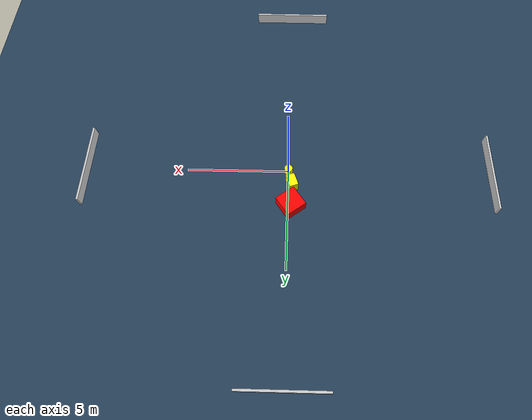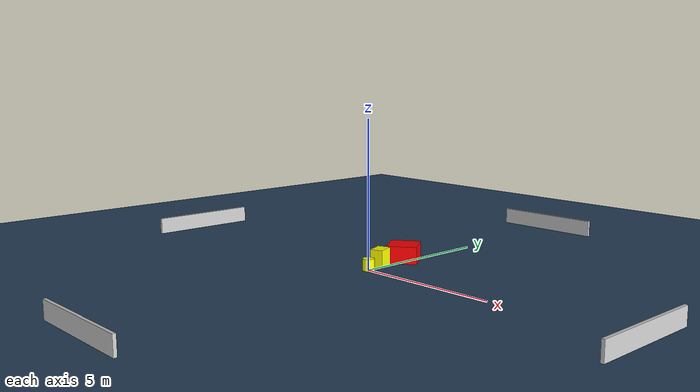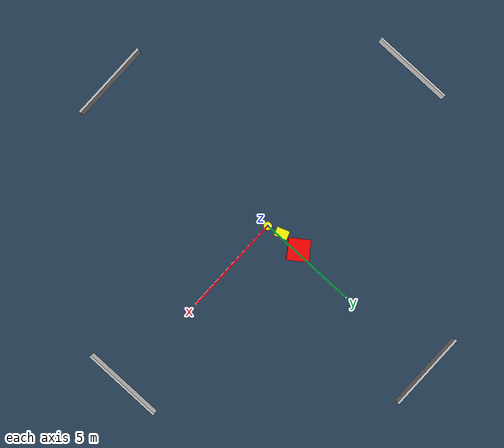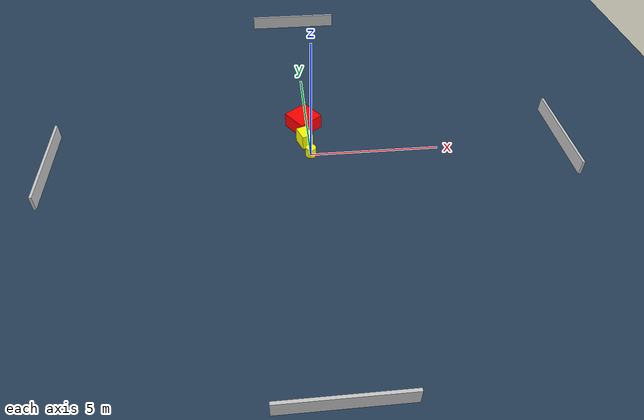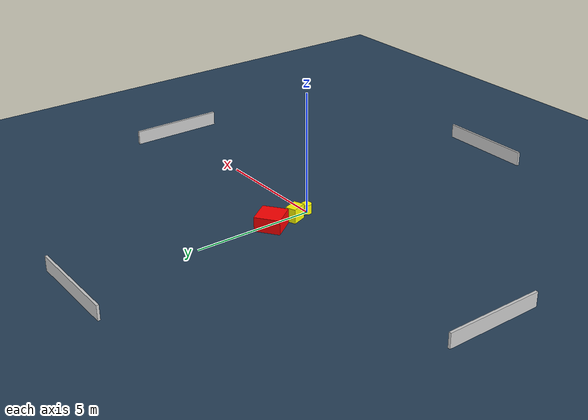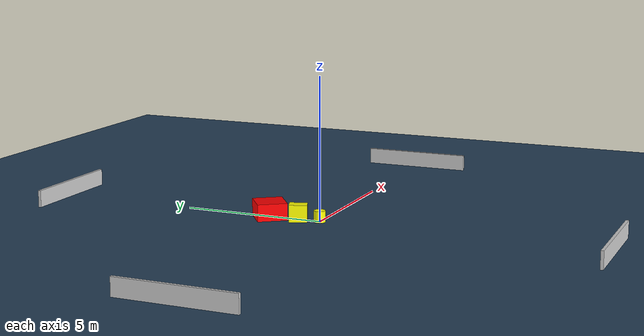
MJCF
<?xml version="1.0" ?>
<mujoco model="generated_environment">
  <option timestep="0.01" integrator="RK4" cone="elliptic"/>
  <default>
    <geom density="1"/>
  </default>
  <asset>
    <texture builtin="gradient" height="3072" name="skybox" rgb1="0.3 0.5 0.7" rgb2="0 0 0" type="skybox" width="512"/>
    <texture builtin="checker" height="300" name="groundplane" rgb1="0.2 0.3 0.4" rgb2="0.1 0.2 0.3" type="2d" width="300"/>
    <material name="groundplane" reflectance="0.2" texrepeat="5 5" texture="groundplane"/>
  </asset>
  <worldbody>
    <light dir="0 0 -1" directional="true" pos="0 0 1.5"/>
    <geom condim="3" friction="0.5 0.005 0.001" material="groundplane" name="floor" pos="0 0 0" size="0 0 0.05" type="plane"/>
    <body name="walls">
      <geom name="wall_1" condim="4" pos="-10.0 0.0 0.3" rgba="0.800000011920929 0.800000011920929 0.800000011920929 1.0" size="0.05 2.0 0.3" type="box"/>
      <geom name="wall_2" condim="4" pos="10.0 0.0 0.3" rgba="0.800000011920929 0.800000011920929 0.800000011920929 1.0" size="0.05 2.0 0.3" type="box"/>
      <geom name="wall_3" condim="4" pos="0.0 -10.0 0.3" rgba="0.800000011920929 0.800000011920929 0.800000011920929 1.0" size="2.0 0.05 0.3" type="box"/>
      <geom name="wall_4" condim="4" pos="0.0 10.0 0.3" rgba="0.800000011920929 0.800000011920929 0.800000011920929 1.0" size="2.0 0.05 0.3" type="box"/>
    </body>
    <body name="robot">
      <joint name="joint_x" type="slide" pos="0 0 0" axis="1 0 0"/>
      <joint name="joint_y" type="slide" pos="0 0 0" axis="0 1 0"/>
      <geom name="robot" type="cylinder" pos="0.0 0.0 0.2" size="0.2 0.2 0.0" mass="5.0" friction="1.0 0.005 0.0001" condim="4" rgba="1.0 1.0 0.0 1.0"/>
    </body>
    <body name="obstacle_1_movable">
      <geom name="obstacle_1_movable" condim="4" pos="-0.18608897409037853 0.7166265127683373 0.3" euler="0 0 110.11466755849892" friction="0.0 0.005 0.001" rgba="1.0 1.0 0.0 1.0" size="0.31304068227207166 0.21818809428747601 0.3" type="box" mass="0.1"/>
      <joint type="free"/>
    </body>
    <body name="obstacle_2_static">
      <geom name="obstacle_2_static" condim="4" pos="-0.1457003622257542 1.8082747230548224 0.3" euler="0 0 35.77604733474361" friction="0.0 0.005 0.001" rgba="1.0 0.0 0.0 1.0" size="0.5224487810496719 0.5220405626303048 0.3" type="box"/>
    </body>
  </worldbody>
  <actuator>
    <motor name="actuator_x" joint="joint_x" gear="1" ctrlrange="-1 1"/>
    <motor name="actuator_y" joint="joint_y" gear="1" ctrlrange="-1 1"/>
  </actuator>
</mujoco>
